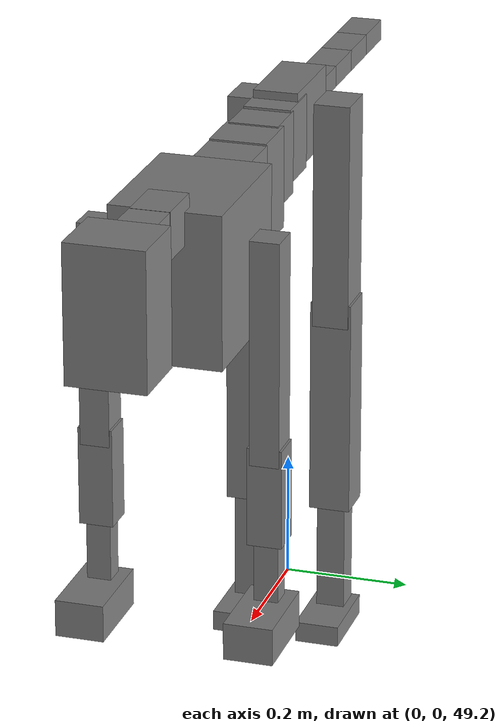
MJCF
<mujoco model="dog">

    <default>
        <joint armature="0.02" stiffness="1" damping="0.2" limited="true"/>
        <geom condim="3" friction="1 0.05 0.05" margin="0.01"/>
        <motor ctrllimited="true" ctrlrange="-1.0 1.0" forcelimited="true" gear="50"/>
    </default>

    <compiler inertiafromgeom="true" angle="radian"/>

    <option timestep="0.016" iterations="50" tolerance="1e-10" solver="Newton" jacobian="dense" cone="pyramidal"/>

    <size nconmax="20000" njmax="60000" nstack="5000000"/>
    <visual>
        <map force="0.1" zfar="30"/>
        <rgba haze="0.15 0.25 0.35 1"/>
        <quality shadowsize="2048"/>
        <global offwidth="800" offheight="800"/>
    </visual>

    <asset>
        <texture type="skybox" builtin="gradient" rgb1="0.3 0.5 0.7" rgb2="0 0 0" width="512" height="512"/>
        <texture name="texplane" type="2d" builtin="checker" rgb1=".2 .3 .4" rgb2=".1 0.15 0.2" width="512" height="512"
                 mark="cross" markrgb=".8 .8 .8"/>
        <texture name="texgeom" type="cube" builtin="flat" mark="cross" width="127" height="1278" rgb1="0.8 0.6 0.4"
                 rgb2="0.8 0.6 0.4" markrgb="1 1 1" random="0.01"/>

        <material name="matplane" reflectance="0.3" texture="texplane" texrepeat="1 1" texuniform="true"/>
        <material name="matgeom" texture="texgeom" texuniform="true" rgba="0.8 0.6 .4 1"/>
    </asset>

    <worldbody>
        <geom name="floor" pos="0 0 0" size="0 0 .25" type="plane" material="matplane" condim="3"/>

        <light directional="false" diffuse=".2 .2 .2" specular="0 0 0" pos="0 0 5" dir="0 0 -1" castshadow="false"/>
        <light mode="targetbodycom" target="torso" directional="false" diffuse=".8 .8 .8" specular="0.3 0.3 0.3"
               pos="0 0 4.0" dir="0 0 -1"/>

        <body name="root" pos="0 0 50">
            <freejoint name="root_1"/>
            <geom type="box" pos="0 0 -0.02" size="0.0774  0.0358  0.063" density="2030"/>

            <body name="spine1" pos="0.054 0 0">
                <joint name="spine1_y" axis="0 1 0" range="0 0.7" limited="true"/>
                <geom type="box" pos="0.02375 0 -0.03" size="0.04375  0.0375  0.05985" density="2030"/>

                <body name="spine2" pos="0.0612 0 0">
                    <joint name="spine2_y" axis="0 1 0" range="-0.15 0.15" limited="true"/>
                    <geom type="box" pos="0.03555  0  -0.04" size="0.04055  0.039  0.06615" density="2030"/>

                    <body name="spine3" pos="0.0730 0 0">
                        <joint name="spine3_y" axis="0 1 0" range="-0.15 0.15" limited="true"/>
                        <geom type="box" pos="0.03555  0  -0.057" size="0.04555  0.0445  0.081" density="2030"/>

                        <body name="spine4" pos="0.0780 0 0">
                            <joint name="spine4_y" axis="0 1 0" range="-0.15 0.15" limited="true"/>
                            <geom type="box" pos="0.05265  0  -0.07" size="0.05265  0.045  0.09135" density="2030"/>

                            <body name="torso" pos="0.1082 0 0">
                                <joint name="torso_y" axis="0 1 0" range="-0.15 0.15" limited="true"/>
                                <geom type="box" pos="0.11925  0  -0.085" size="0.11925  0.085  0.11745"
                                      density="2030"/>

                                <body name="neck1" pos="0.2160  0   0.0180">
                                    <joint name="neck1_y" axis="0 1 0" range="-1.2  -1" limited="true"/>
                                    <geom type="box" pos="0.0423  0  0" size="0.0423  0.03  0.036" density="2325"/>

                                    <body name="neck2" pos="0.0853  0  0">
                                        <joint name="neck2_y" axis="0 1 0" range="0.1  0" limited="true"/>
                                        <geom type="box" pos="0.0423  0  0" size="0.0423  0.03  0.036" density="2325"/>

                                        <body name="head" pos="0.0853  0  0">
                                            <joint name="head_y" axis="0 1 0" range="-0.3  -0.2" limited="true"/>
                                            <geom type="box" pos="0.0531  0  -0.055" size="0.0531  0.06  0.1044"
                                                  density="4030"/>

                                        </body>
                                    </body>
                                </body>

                                <body name="front_shoulder" pos="0.156  0   -0.0480">
                                    <joint name="front_shoulder_y" axis="0 1 0" range="-1 1.5" limited="true"/>
                                    <geom type="box" pos="0 0.13 -0.1465" size="0.0266  0.0227  0.1731" density="1158"/>
                                    <geom type="box" pos="0 -0.13 -0.1465" size="0.0266  0.0227  0.1731"
                                          density="1158"/>

                                    <body name="front_elbow" pos="0  0  -0.2930">
                                        <joint name="front_elbow_y" axis="0 1 0" range="-2 0" limited="true"/>
                                        <geom type="box" pos="0 0.13 -0.0771" size="0.0257  0.0263  0.0771"
                                              density="1081"/>
                                        <geom type="box" pos="0 -0.13 -0.0771" size="0.0257  0.0263  0.0771"
                                              density="1081"/>

                                        <body name="front_wrist" pos="0  0  -0.1542">
                                            <joint name="front_wrist_y" axis="0 1 0" range="-0.2 0" limited="true"/>
                                            <geom type="box" pos="0 0.13 -0.0534" size="0.0168  0.0186  0.0666"
                                                  density="1664"/>
                                            <geom type="box" pos="0 -0.13 -0.0534" size="0.0168  0.0186  0.0666"
                                                  density="1664"/>

                                            <body name="front_finger_end" pos="0  0  -0.1069">
                                                <joint name="front_finger_y" axis="0 1 0" range="-0.4 1"
                                                       limited="true"/>
                                                <geom type="box" pos="0.0374  0.13  -0.0138"
                                                      size="0.0685  0.0374  0.0288" density="1515"/>
                                                <geom type="box" pos="0.0374  -0.13  -0.0138"
                                                      size="0.0685  0.0374  0.0288" density="1515"/>

                                            </body>

                                        </body>
                                    </body>
                                </body>

                            </body>
                        </body>
                    </body>
                </body>
            </body>

            <body name="back_hip" pos="-0.03 0 -0.018">
                <joint name="back_hip_y" axis="0 1 0" range="-1.5 0.3" limited="true"/>
                <geom type="box" pos="0 0.07 -0.1620" size="0.0373  0.0293  0.1848" density="1154"/>
                <geom type="box" pos="0 -0.07 -0.1620" size="0.0373  0.0293  0.1848" density="1154"/>

                <body name="back_knee" pos="0  0  -0.3240">
                    <joint name="back_knee_y" axis="0 1 0" range="0 2.8" limited="true"/>
                    <geom type="box" pos="0 0.07 -0.1623" size="0.0337  0.0332  0.1778" density="1227"/>
                    <geom type="box" pos="0 -0.07 -0.1623" size="0.0337  0.0332  0.1778" density="1227"/>

                    <body name="back_ankle" pos="0  0  -0.3246">
                        <joint name="back_ankle_y" axis="0 1 0" range="-2.2 0" limited="true"/>
                        <geom type="box" pos="0 0.07 -0.1033" size="0.0229  0.0229  0.1146" density="1284"/>
                        <geom type="box" pos="0 -0.07 -0.1033" size="0.0229  0.0229  0.1146" density="1284"/>

                        <body name="back_toe_end" pos="0  0  -0.2066">
                            <joint name="back_toe_y" axis="0 1 0" range="-0.4 1" limited="true"/>
                            <geom type="box" pos="0.0356  0.07  -0.0017" size="0.0652  0.0356  0.0167" density="1515"/>
                            <geom type="box" pos="0.0356  -0.07  -0.0017" size="0.0652  0.0356  0.0167" density="1515"/>

                        </body>
                    </body>
                </body>
            </body>

            <body name="tail1" pos="-0.074 0 -0.006">
                <joint name="tail1_y" axis="0 1 0" range="-0.2 0.2" limited="true"/>
                <geom type="box" pos="-0.0536  0  0" size="0.045  0.025  0.0175" density="1587"/>

                <body name="tail2" pos="-0.09 0 0">
                    <joint name="tail2_y" axis="0 1 0" range="-0.2 0.2" limited="true"/>
                    <geom type="box" pos="-0.0536  0  0" size="0.045  0.025  0.0175" density="1587"/>

                    <body name="tail3" pos="-0.09 0 0">
                        <joint name="tail3_y" axis="0 1 0" range="-0.2 0.2" limited="true"/>
                        <geom type="box" pos="-0.0536  0  0" size="0.045  0.025  0.0175" density="1587"/>

                        <body name="tail4" pos="-0.09 0 0">
                            <joint name="tail4_y" axis="0 1 0" range="-0.2 0.2" limited="true"/>
                            <geom type="box" pos="-0.0536  0  0" size="0.045  0.025  0.0175" density="1587"/>

                        </body>
                    </body>
                </body>
            </body>
        </body>
    </worldbody>

    <actuator>
        <motor joint="spine1_y" forcerange="-150 150     "/>
        <motor joint="spine2_y" forcerange="-150 150     "/>
        <motor joint="spine3_y" forcerange="-150 150     "/>
        <motor joint="spine4_y" forcerange="-150 150     "/>
        <motor joint="torso_y" forcerange="-150 150     "/>
        <motor joint="neck1_y" forcerange="-100 100       "/>
        <motor joint="neck2_y" forcerange="-100 100       "/>
        <motor joint="head_y" forcerange="-150 150       "/>
        <motor joint="front_shoulder_y" forcerange="-107.02 144.31"/>
        <motor joint="front_elbow_y" forcerange="-157.05 133.91"/>
        <motor joint="front_wrist_y" forcerange="-97.12 52.03"/>
        <motor joint="front_finger_y" forcerange="-93.29 66.13"/>
        <motor joint="back_hip_y" forcerange="-307.49 282.62"/>
        <motor joint="back_knee_y" forcerange="-295.50 386.96"/>
        <motor joint="back_angle_y" forcerange="-105.39 160.37"/>
        <motor joint="back_toe_y" forcerange="-78.01 126.50"/>
        <motor joint="tail1_y" forcerange="-50 50     "/>
        <motor joint="tail2_y" forcerange="-50 50     "/>
        <motor joint="tail3_y" forcerange="-50 50     "/>
        <motor joint="tail4_y" forcerange="-50 50     "/>
    </actuator>
</mujoco>
